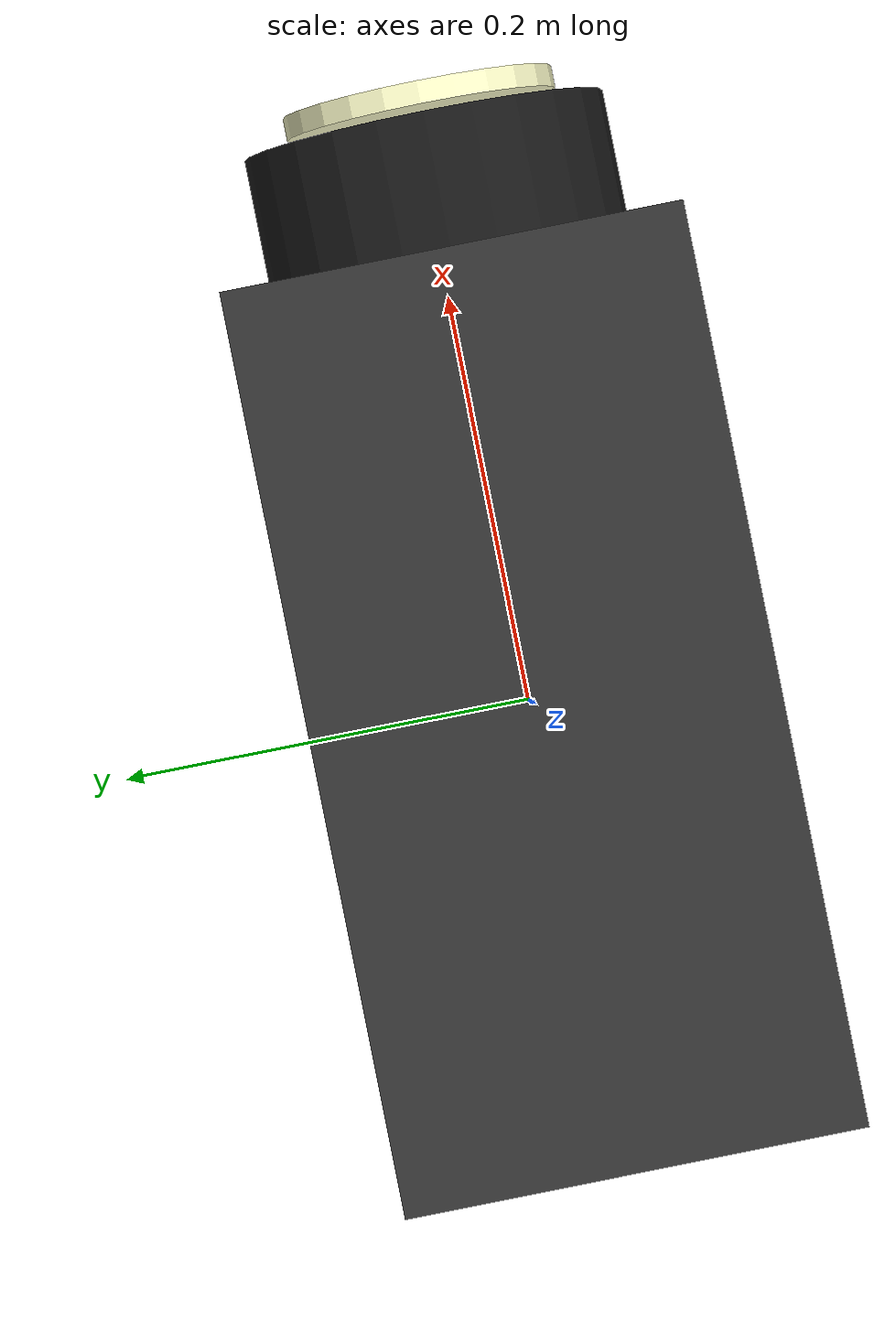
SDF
<?xml version="1.0" ?>
<sdf version="1.8">
  <model name="spot_lamp">
    <static>false</static>

    <link name="chassis">
      <pose>0 0 0.3 0 0 0</pose>

      <inertial>
        <mass>20.0</mass>
        <inertia>
          <ixx>1.0</ixx>
          <iyy>1.0</iyy>
          <izz>1.0</izz>
          <ixy>0.0</ixy>
          <ixz>0.0</ixz>
          <iyz>0.0</iyz>
        </inertia>
      </inertial>

      <collision name="chassis_collision">
        <geometry>
          <box>
            <size>0.4 0.2 0.2</size>
          </box>
        </geometry>
      </collision>

      <visual name="chassis_visual">
        <geometry>
          <box>
            <size>0.4 0.2 0.2</size>
          </box>
        </geometry>
        <material>
          <ambient>0.1 0.1 0.1 1</ambient>
          <diffuse>0.2 0.2 0.2 1</diffuse>
          <specular>0.2 0.2 0.2 1</specular>
        </material>
      </visual>

      <visual name="lamp_housing">
        <pose>0.22 0 0 0 1.5708 0</pose>
        <geometry>
          <cylinder>
            <radius>0.08</radius>
            <length>0.08</length>
          </cylinder>
        </geometry>
        <material>
          <ambient>0.05 0.05 0.05 1</ambient>
          <diffuse>0.1 0.1 0.1 1</diffuse>
          <specular>0.3 0.3 0.3 1</specular>
        </material>
      </visual>

      <visual name="lamp_glass">
        <pose>0.27 0 0 0 1.5708 0</pose>
        <geometry>
          <cylinder>
            <radius>0.06</radius>
            <length>0.01</length>
          </cylinder>
        </geometry>
        <material>
          <ambient>0.8 0.8 0.6 1</ambient>
          <diffuse>1.0 1.0 0.8 1</diffuse>
          <specular>0.2 0.2 0.2 1</specular>
          <emissive>0.8 0.8 0.6 1</emissive>
        </material>
      </visual>

      <light name="headlight" type="spot">
        <pose>0.30 0 0 0 0 0</pose>
        <light_on>true</light_on>
        <cast_shadows>false</cast_shadows>

        <diffuse>1 1 0.95 1</diffuse>
        <specular>0.2 0.2 0.2 1</specular>

        <attenuation>
          <range>30</range>
          <constant>0.2</constant>
          <linear>0.03</linear>
          <quadratic>0.002</quadratic>
        </attenuation>

        <direction>1 0 0</direction>

        <spot>
          <inner_angle>0.18</inner_angle>
          <outer_angle>0.40</outer_angle>
          <falloff>1.0</falloff>
        </spot>
      </light>
    </link>

    <plugin filename="HeadlightToggle" name="mysim::HeadlightToggle"/>
  </model>
</sdf>
